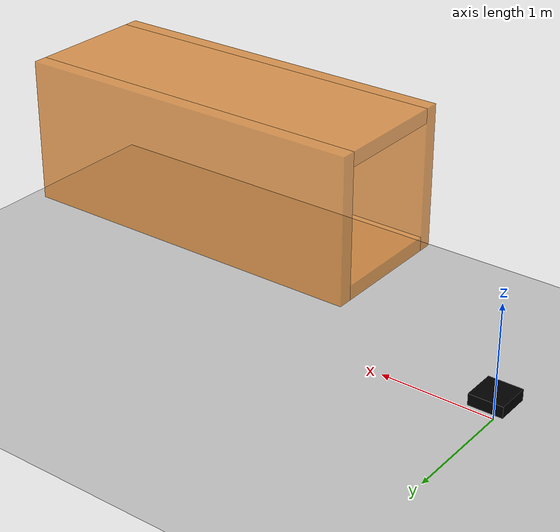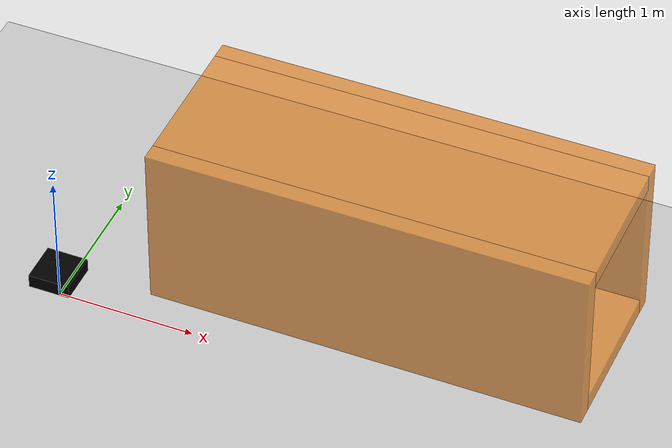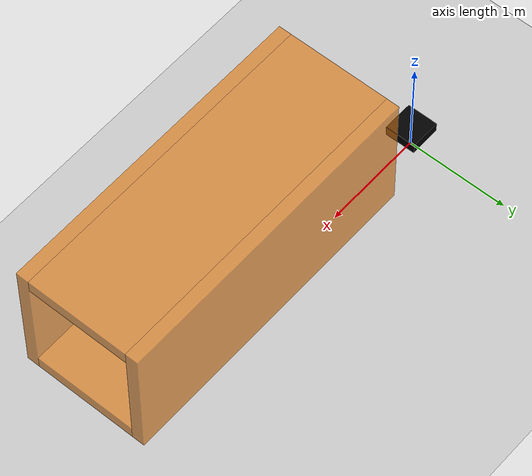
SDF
<?xml version="1.0" ?>
<sdf version="1.7">
  <world name="quadcopter_world">
    <gravity>0 0 -9.81</gravity>
    <physics name="1ms" type="ignored">
      <max_step_size>0.001</max_step_size>
      <real_time_factor>1.0</real_time_factor>
    </physics>

    <plugin
      filename="gz-sim-physics-system"
      name="gz::sim::systems::Physics" />
    <plugin
      filename="gz-sim-user-commands-system"
      name="gz::sim::systems::UserCommands" />
    <plugin
      filename="gz-sim-scene-broadcaster-system"
      name="gz::sim::systems::SceneBroadcaster" />

    <light type="directional" name="sun">
      <cast_shadows>true</cast_shadows>
      <pose>0 0 10 0 0 0</pose>
      <diffuse>0.8 0.8 0.8 1</diffuse>
      <specular>0.2 0.2 0.2 1</specular>
      <attenuation>
        <range>1000</range>
        <constant>0.9</constant>
        <linear>0.01</linear>
        <quadratic>0.001</quadratic>
      </attenuation>
      <direction>-0.5 0.1 -0.9</direction>
    </light>

    <model name="ground_plane">
      <static>true</static>
      <link name="link">
        <collision name="collision">
          <geometry>
            <plane>
              <normal>0 0 1</normal>
              <size>100 100</size>
            </plane>
          </geometry>
        </collision>
        <visual name="visual">
          <geometry>
            <plane>
              <normal>0 0 1</normal>
              <size>100 100</size>
            </plane>
          </geometry>
          <material>
            <ambient>0.8 0.8 0.8 1</ambient>
            <diffuse>0.8 0.8 0.8 1</diffuse>
          </material>
        </visual>
      </link>
    </model>

    <include>
      <uri>model://quadcopter</uri>
      <pose>0 0 0.2 0 0 0</pose>
    </include>

    <!-- Hollow tube obstacle (square-ring approximation), aligned with RViz marker pose. -->
    <model name="tube_obstacle">
      <static>true</static>
      <pose>2.5 0 1.5 0 0 0</pose>
      <link name="tube_link">
        <!-- Left wall -->
        <collision name="left_wall_collision">
          <pose>0 -0.54 0 0 0 0</pose>
          <geometry>
            <box>
              <size>3.0 0.12 1.2</size>
            </box>
          </geometry>
        </collision>
        <visual name="left_wall_visual">
          <pose>0 -0.54 0 0 0 0</pose>
          <geometry>
            <box>
              <size>3.0 0.12 1.2</size>
            </box>
          </geometry>
          <material>
            <ambient>0.9 0.5 0.1 0.7</ambient>
            <diffuse>0.9 0.5 0.1 0.7</diffuse>
          </material>
        </visual>

        <!-- Right wall -->
        <collision name="right_wall_collision">
          <pose>0 0.54 0 0 0 0</pose>
          <geometry>
            <box>
              <size>3.0 0.12 1.2</size>
            </box>
          </geometry>
        </collision>
        <visual name="right_wall_visual">
          <pose>0 0.54 0 0 0 0</pose>
          <geometry>
            <box>
              <size>3.0 0.12 1.2</size>
            </box>
          </geometry>
          <material>
            <ambient>0.9 0.5 0.1 0.7</ambient>
            <diffuse>0.9 0.5 0.1 0.7</diffuse>
          </material>
        </visual>

        <!-- Top wall -->
        <collision name="top_wall_collision">
          <pose>0 0 0.54 0 0 0</pose>
          <geometry>
            <box>
              <size>3.0 0.96 0.12</size>
            </box>
          </geometry>
        </collision>
        <visual name="top_wall_visual">
          <pose>0 0 0.54 0 0 0</pose>
          <geometry>
            <box>
              <size>3.0 0.96 0.12</size>
            </box>
          </geometry>
          <material>
            <ambient>0.9 0.5 0.1 0.7</ambient>
            <diffuse>0.9 0.5 0.1 0.7</diffuse>
          </material>
        </visual>

        <!-- Bottom wall -->
        <collision name="bottom_wall_collision">
          <pose>0 0 -0.54 0 0 0</pose>
          <geometry>
            <box>
              <size>3.0 0.96 0.12</size>
            </box>
          </geometry>
        </collision>
        <visual name="bottom_wall_visual">
          <pose>0 0 -0.54 0 0 0</pose>
          <geometry>
            <box>
              <size>3.0 0.96 0.12</size>
            </box>
          </geometry>
          <material>
            <ambient>0.9 0.5 0.1 0.7</ambient>
            <diffuse>0.9 0.5 0.1 0.7</diffuse>
          </material>
        </visual>
      </link>
    </model>
  </world>
</sdf>

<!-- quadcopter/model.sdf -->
<sdf version="1.7">
  <model name="quadcopter">
    <pose>0 0 0.1 0 0 0</pose>

    <link name="base_link">
      <inertial>
        <mass>1.2</mass>
        <inertia>
          <ixx>0.01</ixx>
          <ixy>0</ixy>
          <ixz>0</ixz>
          <iyy>0.01</iyy>
          <iyz>0</iyz>
          <izz>0.01</izz>
        </inertia>
      </inertial>

      <visual name="base_visual">
        <geometry>
          <box>
            <size>0.3 0.3 0.1</size>
          </box>
        </geometry>
        <material>
          <diffuse>0 0 0 1</diffuse>
        </material>
      </visual>

      <collision name="base_collision">
        <geometry>
          <box>
            <size>0.3 0.3 0.1</size>
          </box>
        </geometry>
      </collision>
    </link>
  </model>
</sdf>
